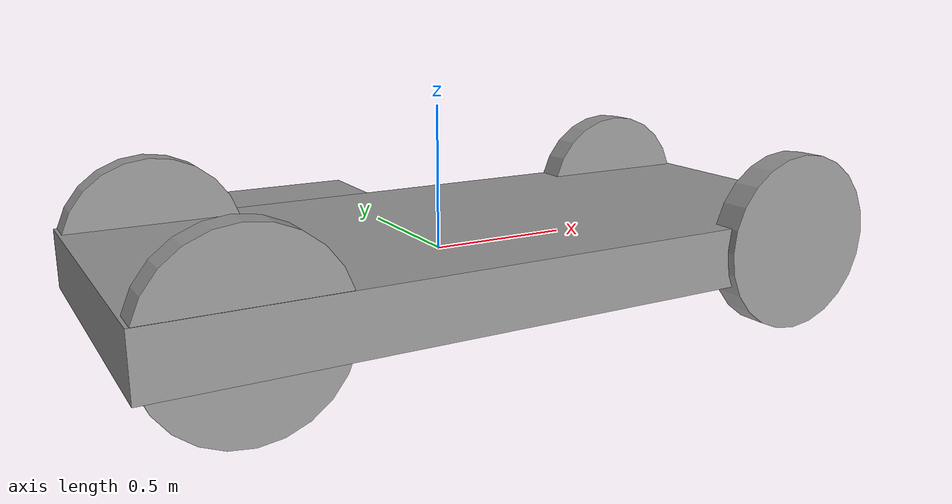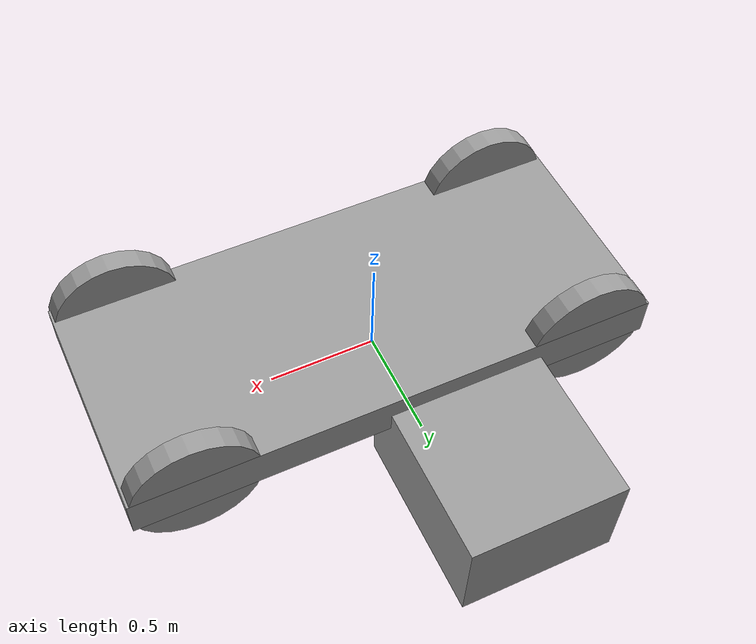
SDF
<?xml version='1.0'?>
<sdf version='1.6'>
  <model name='myvehicle'>
    <model name='MyVehicle'>
      <link name='link_0'>
        <inertial>
          <mass>1</mass>
          <inertia>
            <ixx>0.166667</ixx>
            <ixy>0</ixy>
            <ixz>0</ixz>
            <iyy>0.166667</iyy>
            <iyz>0</iyz>
            <izz>0.166667</izz>
          </inertia>
          <pose frame=''>0 0 0.2 0 -0 0</pose>
        </inertial>
        <pose frame=''>0.054188 -0.135171 0.028227 0 -0 0</pose>
        <gravity>1</gravity>
        <self_collide>0</self_collide>
        <kinematic>0</kinematic>
        <enable_wind>0</enable_wind>
        <visual name='visual'>
          <pose frame=''>0 0 0 0 -0 0</pose>
          <geometry>
            <box>
              <size>2.5 1.1 0.2</size>
            </box>
          </geometry>
          <material>
            <lighting>1</lighting>
            <script>
              <uri>file://media/materials/scripts/gazebo.material</uri>
              <name>Gazebo/Grey</name>
            </script>
            <shader type='vertex'>
              <normal_map>__default__</normal_map>
            </shader>
            <ambient>0.3 0.3 0.3 1</ambient>
            <diffuse>0.7 0.7 0.7 1</diffuse>
            <specular>0.01 0.01 0.01 1</specular>
            <emissive>0 0 0 1</emissive>
          </material>
          <transparency>0</transparency>
          <cast_shadows>1</cast_shadows>
        </visual>
        <collision name='collision'>
          <laser_retro>0</laser_retro>
          <max_contacts>10</max_contacts>
          <pose frame=''>0 0 0 0 -0 0</pose>
          <geometry>
            <box>
              <size>2.5 1.1 0.2</size>
            </box>
          </geometry>
          <surface>
            <friction>
              <ode>
                <mu>1</mu>
                <mu2>1</mu2>
                <fdir1>0 0 0</fdir1>
                <slip1>0</slip1>
                <slip2>0</slip2>
              </ode>
              <torsional>
                <coefficient>1</coefficient>
                <patch_radius>0</patch_radius>
                <surface_radius>0</surface_radius>
                <use_patch_radius>1</use_patch_radius>
                <ode>
                  <slip>0</slip>
                </ode>
              </torsional>
            </friction>
            <bounce>
              <restitution_coefficient>0</restitution_coefficient>
              <threshold>1e+06</threshold>
            </bounce>
            <contact>
              <collide_without_contact>0</collide_without_contact>
              <collide_without_contact_bitmask>1</collide_without_contact_bitmask>
              <collide_bitmask>1</collide_bitmask>
              <ode>
                <soft_cfm>0</soft_cfm>
                <soft_erp>0.2</soft_erp>
                <kp>1e+13</kp>
                <kd>1</kd>
                <max_vel>0.01</max_vel>
                <min_depth>0</min_depth>
              </ode>
              <bullet>
                <split_impulse>1</split_impulse>
                <split_impulse_penetration_threshold>-0.01</split_impulse_penetration_threshold>
                <soft_cfm>0</soft_cfm>
                <soft_erp>0.2</soft_erp>
                <kp>1e+13</kp>
                <kd>1</kd>
              </bullet>
            </contact>
          </surface>
        </collision>
      </link>
      <link name='link_2'>
        <inertial>
          <mass>1</mass>
          <inertia>
            <ixx>0.145833</ixx>
            <ixy>0</ixy>
            <ixz>0</ixz>
            <iyy>0.145833</iyy>
            <iyz>0</iyz>
            <izz>0.125</izz>
          </inertia>
          <pose frame=''>0 0 0 1.57 -0 0</pose>
        </inertial>
        <pose frame=''>-0.895812 -0.633047 0.048546 -1.57788 0 0</pose>
        <gravity>1</gravity>
        <self_collide>0</self_collide>
        <kinematic>0</kinematic>
        <enable_wind>0</enable_wind>
        <visual name='visual'>
          <pose frame=''>0 0 0 0 -0 0</pose>
          <geometry>
            <cylinder>
              <radius>0.3</radius>
              <length>0.1</length>
            </cylinder>
          </geometry>
          <material>
            <lighting>1</lighting>
            <script>
              <uri>file://media/materials/scripts/gazebo.material</uri>
              <name>Gazebo/Grey</name>
            </script>
            <shader type='vertex'>
              <normal_map>__default__</normal_map>
            </shader>
            <ambient>0.3 0.3 0.3 1</ambient>
            <diffuse>0.7 0.7 0.7 1</diffuse>
            <specular>0.01 0.01 0.01 1</specular>
            <emissive>0 0 0 1</emissive>
          </material>
          <transparency>0</transparency>
          <cast_shadows>1</cast_shadows>
        </visual>
        <collision name='collision'>
          <laser_retro>0</laser_retro>
          <max_contacts>10</max_contacts>
          <pose frame=''>0 0 0 0 -0 0</pose>
          <geometry>
            <cylinder>
              <radius>0.3</radius>
              <length>0.1</length>
            </cylinder>
          </geometry>
          <surface>
            <friction>
              <ode>
                <mu>1</mu>
                <mu2>1</mu2>
                <fdir1>0 0 0</fdir1>
                <slip1>0</slip1>
                <slip2>0</slip2>
              </ode>
              <torsional>
                <coefficient>1</coefficient>
                <patch_radius>0</patch_radius>
                <surface_radius>0</surface_radius>
                <use_patch_radius>1</use_patch_radius>
                <ode>
                  <slip>0</slip>
                </ode>
              </torsional>
            </friction>
            <bounce>
              <restitution_coefficient>0</restitution_coefficient>
              <threshold>1e+06</threshold>
            </bounce>
            <contact>
              <collide_without_contact>0</collide_without_contact>
              <collide_without_contact_bitmask>1</collide_without_contact_bitmask>
              <collide_bitmask>1</collide_bitmask>
              <ode>
                <soft_cfm>0</soft_cfm>
                <soft_erp>0.2</soft_erp>
                <kp>1e+13</kp>
                <kd>1</kd>
                <max_vel>0.01</max_vel>
                <min_depth>0</min_depth>
              </ode>
              <bullet>
                <split_impulse>1</split_impulse>
                <split_impulse_penetration_threshold>-0.01</split_impulse_penetration_threshold>
                <soft_cfm>0</soft_cfm>
                <soft_erp>0.2</soft_erp>
                <kp>1e+13</kp>
                <kd>1</kd>
              </bullet>
            </contact>
          </surface>
        </collision>
      </link>
      <link name='link_2_clone'>
        <inertial>
          <mass>1</mass>
          <inertia>
            <ixx>0.145833</ixx>
            <ixy>0</ixy>
            <ixz>0</ixz>
            <iyy>0.145833</iyy>
            <iyz>0</iyz>
            <izz>0.125</izz>
          </inertia>
          <pose frame=''>0 0 0 1.57 -0 0</pose>
        </inertial>
        <pose frame=''>1.00419 -0.662335 0.048546 -1.57788 0 0</pose>
        <gravity>1</gravity>
        <self_collide>0</self_collide>
        <kinematic>0</kinematic>
        <enable_wind>0</enable_wind>
        <visual name='visual'>
          <pose frame=''>0 0 0 0 -0 0</pose>
          <geometry>
            <cylinder>
              <radius>0.3</radius>
              <length>0.1</length>
            </cylinder>
          </geometry>
          <material>
            <lighting>1</lighting>
            <script>
              <uri>file://media/materials/scripts/gazebo.material</uri>
              <name>Gazebo/Grey</name>
            </script>
            <shader type='vertex'>
              <normal_map>__default__</normal_map>
            </shader>
            <ambient>0.3 0.3 0.3 1</ambient>
            <diffuse>0.7 0.7 0.7 1</diffuse>
            <specular>0.01 0.01 0.01 1</specular>
            <emissive>0 0 0 1</emissive>
          </material>
          <transparency>0</transparency>
          <cast_shadows>1</cast_shadows>
        </visual>
        <collision name='collision'>
          <laser_retro>0</laser_retro>
          <max_contacts>10</max_contacts>
          <pose frame=''>0 0 0 0 -0 0</pose>
          <geometry>
            <cylinder>
              <radius>0.3</radius>
              <length>0.1</length>
            </cylinder>
          </geometry>
          <surface>
            <friction>
              <ode>
                <mu>1</mu>
                <mu2>1</mu2>
                <fdir1>0 0 0</fdir1>
                <slip1>0</slip1>
                <slip2>0</slip2>
              </ode>
              <torsional>
                <coefficient>1</coefficient>
                <patch_radius>0</patch_radius>
                <surface_radius>0</surface_radius>
                <use_patch_radius>1</use_patch_radius>
                <ode>
                  <slip>0</slip>
                </ode>
              </torsional>
            </friction>
            <bounce>
              <restitution_coefficient>0</restitution_coefficient>
              <threshold>1e+06</threshold>
            </bounce>
            <contact>
              <collide_without_contact>0</collide_without_contact>
              <collide_without_contact_bitmask>1</collide_without_contact_bitmask>
              <collide_bitmask>1</collide_bitmask>
              <ode>
                <soft_cfm>0</soft_cfm>
                <soft_erp>0.2</soft_erp>
                <kp>1e+13</kp>
                <kd>1</kd>
                <max_vel>0.01</max_vel>
                <min_depth>0</min_depth>
              </ode>
              <bullet>
                <split_impulse>1</split_impulse>
                <split_impulse_penetration_threshold>-0.01</split_impulse_penetration_threshold>
                <soft_cfm>0</soft_cfm>
                <soft_erp>0.2</soft_erp>
                <kp>1e+13</kp>
                <kd>1</kd>
              </bullet>
            </contact>
          </surface>
        </collision>
      </link>
      <link name='link_2_clone_0'>
        <inertial>
          <mass>1</mass>
          <inertia>
            <ixx>0.145833</ixx>
            <ixy>0</ixy>
            <ixz>0</ixz>
            <iyy>0.145833</iyy>
            <iyz>0</iyz>
            <izz>0.125</izz>
          </inertia>
          <pose frame=''>0 0 0 1.57 -0 0</pose>
        </inertial>
        <pose frame=''>-0.895812 0.362705 0.048227 -1.57788 0 0</pose>
        <gravity>1</gravity>
        <self_collide>0</self_collide>
        <kinematic>0</kinematic>
        <enable_wind>0</enable_wind>
        <visual name='visual'>
          <pose frame=''>0 0 0 0 -0 0</pose>
          <geometry>
            <cylinder>
              <radius>0.3</radius>
              <length>0.1</length>
            </cylinder>
          </geometry>
          <material>
            <lighting>1</lighting>
            <script>
              <uri>file://media/materials/scripts/gazebo.material</uri>
              <name>Gazebo/Grey</name>
            </script>
            <shader type='vertex'>
              <normal_map>__default__</normal_map>
            </shader>
            <ambient>0.3 0.3 0.3 1</ambient>
            <diffuse>0.7 0.7 0.7 1</diffuse>
            <specular>0.01 0.01 0.01 1</specular>
            <emissive>0 0 0 1</emissive>
          </material>
          <transparency>0</transparency>
          <cast_shadows>1</cast_shadows>
        </visual>
        <collision name='collision'>
          <laser_retro>0</laser_retro>
          <max_contacts>10</max_contacts>
          <pose frame=''>0 0 0 0 -0 0</pose>
          <geometry>
            <cylinder>
              <radius>0.3</radius>
              <length>0.1</length>
            </cylinder>
          </geometry>
          <surface>
            <friction>
              <ode>
                <mu>1</mu>
                <mu2>1</mu2>
                <fdir1>0 0 0</fdir1>
                <slip1>0</slip1>
                <slip2>0</slip2>
              </ode>
              <torsional>
                <coefficient>1</coefficient>
                <patch_radius>0</patch_radius>
                <surface_radius>0</surface_radius>
                <use_patch_radius>1</use_patch_radius>
                <ode>
                  <slip>0</slip>
                </ode>
              </torsional>
            </friction>
            <bounce>
              <restitution_coefficient>0</restitution_coefficient>
              <threshold>1e+06</threshold>
            </bounce>
            <contact>
              <collide_without_contact>0</collide_without_contact>
              <collide_without_contact_bitmask>1</collide_without_contact_bitmask>
              <collide_bitmask>1</collide_bitmask>
              <ode>
                <soft_cfm>0</soft_cfm>
                <soft_erp>0.2</soft_erp>
                <kp>1e+13</kp>
                <kd>1</kd>
                <max_vel>0.01</max_vel>
                <min_depth>0</min_depth>
              </ode>
              <bullet>
                <split_impulse>1</split_impulse>
                <split_impulse_penetration_threshold>-0.01</split_impulse_penetration_threshold>
                <soft_cfm>0</soft_cfm>
                <soft_erp>0.2</soft_erp>
                <kp>1e+13</kp>
                <kd>1</kd>
              </bullet>
            </contact>
          </surface>
        </collision>
      </link>
      <link name='link_2_clone_1'>
        <inertial>
          <mass>1</mass>
          <inertia>
            <ixx>0.145833</ixx>
            <ixy>0</ixy>
            <ixz>0</ixz>
            <iyy>0.145833</iyy>
            <iyz>0</iyz>
            <izz>0.125</izz>
          </inertia>
          <pose frame=''>0 0 0 1.57 -0 0</pose>
        </inertial>
        <pose frame=''>1.00419 0.362705 0.048227 -1.57788 0 0</pose>
        <gravity>1</gravity>
        <self_collide>0</self_collide>
        <kinematic>0</kinematic>
        <enable_wind>0</enable_wind>
        <visual name='visual'>
          <pose frame=''>0 0 0 0 -0 0</pose>
          <geometry>
            <cylinder>
              <radius>0.3</radius>
              <length>0.1</length>
            </cylinder>
          </geometry>
          <material>
            <lighting>1</lighting>
            <script>
              <uri>file://media/materials/scripts/gazebo.material</uri>
              <name>Gazebo/Grey</name>
            </script>
            <shader type='vertex'>
              <normal_map>__default__</normal_map>
            </shader>
            <ambient>0.3 0.3 0.3 1</ambient>
            <diffuse>0.7 0.7 0.7 1</diffuse>
            <specular>0.01 0.01 0.01 1</specular>
            <emissive>0 0 0 1</emissive>
          </material>
          <transparency>0</transparency>
          <cast_shadows>1</cast_shadows>
        </visual>
        <collision name='collision'>
          <laser_retro>0</laser_retro>
          <max_contacts>10</max_contacts>
          <pose frame=''>0 0 0 0 -0 0</pose>
          <geometry>
            <cylinder>
              <radius>0.3</radius>
              <length>0.1</length>
            </cylinder>
          </geometry>
          <surface>
            <friction>
              <ode>
                <mu>1</mu>
                <mu2>1</mu2>
                <fdir1>0 0 0</fdir1>
                <slip1>0</slip1>
                <slip2>0</slip2>
              </ode>
              <torsional>
                <coefficient>1</coefficient>
                <patch_radius>0</patch_radius>
                <surface_radius>0</surface_radius>
                <use_patch_radius>1</use_patch_radius>
                <ode>
                  <slip>0</slip>
                </ode>
              </torsional>
            </friction>
            <bounce>
              <restitution_coefficient>0</restitution_coefficient>
              <threshold>1e+06</threshold>
            </bounce>
            <contact>
              <collide_without_contact>0</collide_without_contact>
              <collide_without_contact_bitmask>1</collide_without_contact_bitmask>
              <collide_bitmask>1</collide_bitmask>
              <ode>
                <soft_cfm>0</soft_cfm>
                <soft_erp>0.2</soft_erp>
                <kp>1e+13</kp>
                <kd>1</kd>
                <max_vel>0.01</max_vel>
                <min_depth>0</min_depth>
              </ode>
              <bullet>
                <split_impulse>1</split_impulse>
                <split_impulse_penetration_threshold>-0.01</split_impulse_penetration_threshold>
                <soft_cfm>0</soft_cfm>
                <soft_erp>0.2</soft_erp>
                <kp>1e+13</kp>
                <kd>1</kd>
              </bullet>
            </contact>
          </surface>
        </collision>
      </link>
      <link name='link_3'>
        <inertial>
          <mass>1</mass>
          <inertia>
            <ixx>0.166667</ixx>
            <ixy>0</ixy>
            <ixz>0</ixz>
            <iyy>0.166667</iyy>
            <iyz>0</iyz>
            <izz>0.166667</izz>
          </inertia>
          <pose frame=''>0 0 0 0 -0 0</pose>
        </inertial>
        <pose frame=''>-0.270941 0.705141 -0.221773 0 -0 0</pose>
        <gravity>1</gravity>
        <self_collide>0</self_collide>
        <kinematic>0</kinematic>
        <enable_wind>0</enable_wind>
        <visual name='visual'>
          <pose frame=''>0 0 0 0 -0 0</pose>
          <geometry>
            <box>
              <size>0.75 0.9 0.5</size>
            </box>
          </geometry>
          <material>
            <lighting>1</lighting>
            <script>
              <uri>file://media/materials/scripts/gazebo.material</uri>
              <name>Gazebo/Grey</name>
            </script>
            <shader type='vertex'>
              <normal_map>__default__</normal_map>
            </shader>
            <ambient>0.3 0.3 0.3 1</ambient>
            <diffuse>0.7 0.7 0.7 1</diffuse>
            <specular>0.01 0.01 0.01 1</specular>
            <emissive>0 0 0 1</emissive>
          </material>
          <transparency>0</transparency>
          <cast_shadows>1</cast_shadows>
        </visual>
        <collision name='collision'>
          <laser_retro>0</laser_retro>
          <max_contacts>10</max_contacts>
          <pose frame=''>0 0 0 0 -0 0</pose>
          <geometry>
            <box>
              <size>0.75 0.9 0.5</size>
            </box>
          </geometry>
          <surface>
            <friction>
              <ode>
                <mu>1</mu>
                <mu2>1</mu2>
                <fdir1>0 0 0</fdir1>
                <slip1>0</slip1>
                <slip2>0</slip2>
              </ode>
              <torsional>
                <coefficient>1</coefficient>
                <patch_radius>0</patch_radius>
                <surface_radius>0</surface_radius>
                <use_patch_radius>1</use_patch_radius>
                <ode>
                  <slip>0</slip>
                </ode>
              </torsional>
            </friction>
            <bounce>
              <restitution_coefficient>0</restitution_coefficient>
              <threshold>1e+06</threshold>
            </bounce>
            <contact>
              <collide_without_contact>0</collide_without_contact>
              <collide_without_contact_bitmask>1</collide_without_contact_bitmask>
              <collide_bitmask>1</collide_bitmask>
              <ode>
                <soft_cfm>0</soft_cfm>
                <soft_erp>0.2</soft_erp>
                <kp>1e+13</kp>
                <kd>1</kd>
                <max_vel>0.01</max_vel>
                <min_depth>0</min_depth>
              </ode>
              <bullet>
                <split_impulse>1</split_impulse>
                <split_impulse_penetration_threshold>-0.01</split_impulse_penetration_threshold>
                <soft_cfm>0</soft_cfm>
                <soft_erp>0.2</soft_erp>
                <kp>1e+13</kp>
                <kd>1</kd>
              </bullet>
            </contact>
          </surface>
        </collision>
      </link>
      <joint name='link_0_JOINT_0' type='revolute'>
        <parent>link_0</parent>
        <child>link_2</child>
        <pose frame=''>0 0 0 0 -0 0</pose>
        <axis>
          <xyz>1 0 0</xyz>
          <use_parent_model_frame>0</use_parent_model_frame>
          <limit>
            <lower>-1.79769e+308</lower>
            <upper>1.79769e+308</upper>
            <effort>-1</effort>
            <velocity>-1</velocity>
          </limit>
          <dynamics>
            <spring_reference>0</spring_reference>
            <spring_stiffness>0</spring_stiffness>
            <damping>0</damping>
          </dynamics>
        </axis>
        <physics>
          <ode>
            <limit>
              <cfm>0</cfm>
              <erp>0.2</erp>
            </limit>
            <suspension>
              <cfm>0</cfm>
              <erp>0.2</erp>
            </suspension>
          </ode>
        </physics>
      </joint>
      <joint name='link_0_JOINT_1' type='revolute'>
        <parent>link_0</parent>
        <child>link_2_clone</child>
        <pose frame=''>0 0 0 0 -0 0</pose>
        <axis>
          <xyz>1 0 0</xyz>
          <use_parent_model_frame>0</use_parent_model_frame>
          <limit>
            <lower>-1.79769e+308</lower>
            <upper>1.79769e+308</upper>
            <effort>-1</effort>
            <velocity>-1</velocity>
          </limit>
          <dynamics>
            <spring_reference>0</spring_reference>
            <spring_stiffness>0</spring_stiffness>
            <damping>0</damping>
          </dynamics>
        </axis>
        <physics>
          <ode>
            <limit>
              <cfm>0</cfm>
              <erp>0.2</erp>
            </limit>
            <suspension>
              <cfm>0</cfm>
              <erp>0.2</erp>
            </suspension>
          </ode>
        </physics>
      </joint>
      <joint name='link_0_JOINT_2' type='revolute'>
        <parent>link_0</parent>
        <child>link_2_clone_0</child>
        <pose frame=''>0 0 0 0 -0 0</pose>
        <axis>
          <xyz>1 0 0</xyz>
          <use_parent_model_frame>0</use_parent_model_frame>
          <limit>
            <lower>-1.79769e+308</lower>
            <upper>1.79769e+308</upper>
            <effort>-1</effort>
            <velocity>-1</velocity>
          </limit>
          <dynamics>
            <spring_reference>0</spring_reference>
            <spring_stiffness>0</spring_stiffness>
            <damping>0</damping>
          </dynamics>
        </axis>
        <physics>
          <ode>
            <limit>
              <cfm>0</cfm>
              <erp>0.2</erp>
            </limit>
            <suspension>
              <cfm>0</cfm>
              <erp>0.2</erp>
            </suspension>
          </ode>
        </physics>
      </joint>
      <joint name='link_0_JOINT_3' type='revolute'>
        <parent>link_0</parent>
        <child>link_2_clone_1</child>
        <pose frame=''>0 0 0 0 -0 0</pose>
        <axis>
          <xyz>1 0 0</xyz>
          <use_parent_model_frame>0</use_parent_model_frame>
          <limit>
            <lower>-1.79769e+308</lower>
            <upper>1.79769e+308</upper>
            <effort>-1</effort>
            <velocity>-1</velocity>
          </limit>
          <dynamics>
            <spring_reference>0</spring_reference>
            <spring_stiffness>0</spring_stiffness>
            <damping>0</damping>
          </dynamics>
        </axis>
        <physics>
          <ode>
            <limit>
              <cfm>0</cfm>
              <erp>0.2</erp>
            </limit>
            <suspension>
              <cfm>0</cfm>
              <erp>0.2</erp>
            </suspension>
          </ode>
        </physics>
      </joint>
      <static>0</static>
      <allow_auto_disable>1</allow_auto_disable>
      <pose frame=''>0 0 0 0 -0 0</pose>
    </model>
    <static>0</static>
    <allow_auto_disable>1</allow_auto_disable>
  </model>
</sdf>
